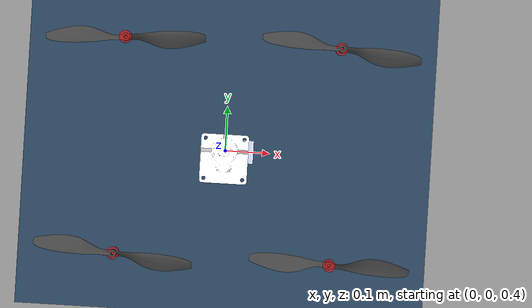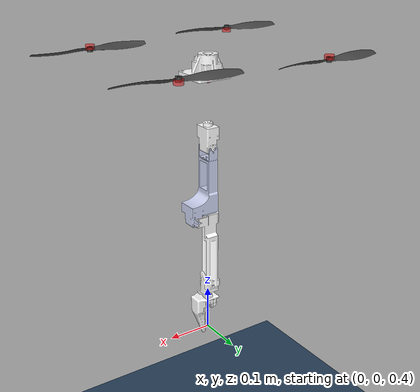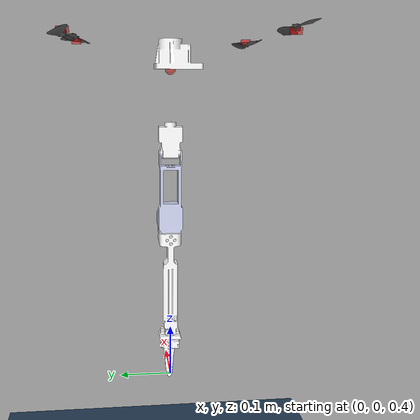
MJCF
<mujoco model="x500_arm_v1">
    <compiler angle="radian" meshdir="meshes/" />
    <option timestep="0.005" integrator="implicit" density="1.225" viscosity="1.8e-5"/>
    <size njmax="500" nconmax="100" />
    <asset>
        <texture name="grid" type="2d" builtin="checker" width="512" height="512" rgb1=".1 .2 .3" rgb2=".2 .3 .4"/>
        <material name="grid" texture="grid" texrepeat="1 1" texuniform="true" reflectance="0.2" specular="1.0" shininess="0.5"/>
        <mesh name="base_link" file="base_link.STL" />
        <mesh name="rotor_1" file="rotor_1.STL" />
        <mesh name="rotor_2" file="rotor_2.STL" />
        <mesh name="rotor_3" file="rotor_3.STL" />
        <mesh name="rotor_4" file="rotor_4.STL" />
        <mesh name="link_1" file="link_1.STL" />
        <mesh name="link_2" file="link_2.STL" />
        <mesh name="link_3" file="link_3.STL" />
        <mesh name="link_4" file="link_4.STL" />
        <mesh name="link_5" file="link_5.STL" />
    </asset>
    <worldbody>
        <geom name="floor" type="plane" pos="0 0 0" size="0 0 0.1" contype="1" conaffinity="1" material="grid"/>
        <light directional="true" diffuse=".8 .8 .8" specular=".5 .5 .5" pos="0 0 5" dir="0 0 -1" castshadow="true"/>
        <body name="base_link" pos="0 0 1">
            <inertial pos="0.0165436 0.00023483 -0.0394339" quat="0.00462653 0.709778 -0.0056507 0.704387" mass="0.781896" diaginertia="0.016914 0.0133249 0.0128457" />
            <joint name="floating_base_joint" type="free" />
            <geom type="mesh" contype="1" conaffinity="1" group="1" rgba="1 1 1 1" mesh="base_link" />
            <site name="base_link_origin" type="sphere" size="0.01" rgba="1 0 0 0.5" pos="0 0 0"/>
            <body name="rotor_1" pos="0.18164 -0.17688 0.056">
                <inertial pos="0 0 0.0062143" quat="-0.0103827 0.707031 0.0103827 0.707031" mass="0.012" diaginertia="5.789e-05 5.76494e-05 4.10648e-07" />
                <joint name="rotor_joint_1" pos="0 0 0" axis="0 0 1" />
                <geom type="mesh" contype="1" conaffinity="1" group="1" rgba="0.25098 0.25098 0.25098 1" mesh="rotor_1" />
                <site name="rotor_joint_thrust1" type="cylinder" size="0.01 0.005" pos="0 0 0" rgba="1 0 0 0.5"/>
            </body>
            <body name="rotor_2" pos="0.18164 0.17688 0.056">
                <inertial pos="0 0 0.0062122" quat="0.0104388 0.70703 -0.0104388 0.70703" mass="0.012" diaginertia="5.793e-05 5.76799e-05 4.10086e-07" />
                <joint name="rotor_joint_2" pos="0 0 0" axis="0 0 1" />
                <geom type="mesh" contype="1" conaffinity="1" group="1" rgba="0.25098 0.25098 0.25098 1" mesh="rotor_2" />
                <site name="rotor_joint_thrust2" type="cylinder" size="0.01 0.005" pos="0 0 0" rgba="1 0 0 0.5"/>
            </body>
            <body name="rotor_3" pos="-0.17212 0.17688 0.056">
                <inertial pos="0 0 0.0062143" quat="-0.0103827 0.707031 0.0103827 0.707031" mass="0.012" diaginertia="5.789e-05 5.76494e-05 4.10648e-07" />
                <joint name="rotor_joint_3" pos="0 0 0" axis="0 0 1" />
                <geom type="mesh" contype="1" conaffinity="1" group="1" rgba="0.25098 0.25098 0.25098 1" mesh="rotor_3" />
                <site name="rotor_joint_thrust3" type="cylinder" size="0.01 0.005" pos="0 0 0" rgba="1 0 0 0.5"/>
            </body>
            <body name="rotor_4" pos="-0.17212 -0.17688 0.056">
                <inertial pos="0 0 0.00621224" quat="0.0104388 0.70703 -0.0104388 0.70703" mass="0.012" diaginertia="5.793e-05 5.76799e-05 4.10086e-07" />
                <joint name="rotor_joint_4" pos="0 0 0" axis="0 0 1" />
                <geom type="mesh" contype="1" conaffinity="1" group="1" rgba="0.25098 0.25098 0.25098 1" mesh="rotor_4" />
                <site name="rotor_joint_thrust4" type="cylinder" size="0.01 0.005" pos="0 0 0" rgba="1 0 0 0.5"/>
            </body>
            <body name="link_1" pos="0 0 -0.10331">
                <inertial pos="0 0.0015687 -0.034602" quat="0.999256 0.0385748 0 0" mass="0.08581" diaginertia="3.717e-05 3.01296e-05 1.84204e-05" />
                <joint name="joint_1" pos="0 0 0" axis="0 0 1" limited="true" range="-2.8973 2.8973" damping="0.72763" frictionloss="0.068647" />
                <geom type="mesh" contype="1" conaffinity="1" group="1" rgba="1 1 1 1" mesh="link_1" />
                <body name="link_2" pos="0 0 -0.04861" quat="-2.59734e-06 -2.59735e-06 0.707108 0.707105">
                    <inertial pos="-0.0260946 -0.13097 0.00115046" quat="0.618576 0.473741 -0.51792 0.353118" mass="0.11524" diaginertia="0.000254471 0.000252713 4.03853e-05" />
                    <joint name="joint_2" pos="0 0 0" axis="0 0 1" limited="true" range="-1.7628 1.7628" damping="0.62275" frictionloss="0.098067" />
                    <geom type="mesh" contype="1" conaffinity="1" group="1" rgba="0.79216 0.81961 0.93333 1" mesh="link_2" />
                    <body name="link_3" pos="-0.03814 -0.164 0.0002">
                        <inertial pos="0.0395021 -0.10829 0.00063991" quat="0.488487 0.513244 -0.485818 0.511803" mass="0.0848" diaginertia="0.000517311 0.000512861 1.8818e-05" />
                        <joint name="joint_3" pos="0 0 0" axis="0 0 1" limited="true" range="0 3.5186" damping="0.72763" frictionloss="0.068647" />
                        <geom type="mesh" contype="1" conaffinity="1" group="1" rgba="1 1 1 1" mesh="link_3" />
                        <body name="link_4" pos="0.03582 -0.1935 0.00077" quat="-2.59734e-06 2.59735e-06 0.707108 -0.707105">
                            <inertial pos="-0.0181121 -5.48e-06 0.0317442" quat="0.703728 -0.063696 -0.0627467 0.704821" mass="0.01547" diaginertia="1.17e-05 1.06262e-05 3.49374e-06" />
                            <joint name="joint_4" pos="0 0 0" axis="0 0 1" limited="true" range="-2.8973 2.8973" damping="0.13298" frictionloss="0.027851" />
                            <geom type="mesh" contype="1" conaffinity="1" group="1" rgba="1 1 1 1" mesh="link_4" />
                            <body name="link_5" pos="0.0044 0 0.02243" quat="0.707105 0.707108 0 0">
                                <inertial pos="-0.0015718 0.0322801 -0.00038534" quat="0.694561 0.718322 0.0332439 0.0222174" mass="0.00926" diaginertia="4.4213e-06 3.8733e-06 9.55405e-07" />
                                <joint name="joint_5" pos="0 0 0" axis="0 0 1" limited="true" range="0 1.7628" damping="0.13298" frictionloss="0.027851" />
                                <geom type="mesh" contype="1" conaffinity="1" group="1" rgba="1 1 1 1" mesh="link_5" />
                            </body>
                        </body>
                    </body>
                </body>
            </body>
        </body>
    </worldbody>
    <actuator>
        <motor name="rotor_joint_1" joint="rotor_joint_1" />
        <motor name="rotor_joint_2" joint="rotor_joint_2" />
        <motor name="rotor_joint_3" joint="rotor_joint_3" />
        <motor name="rotor_joint_4" joint="rotor_joint_4" />
        <motor name="rotor_joint_thrust1" site="rotor_joint_thrust1" gear="0 0 1 0 0 -0.016" />
        <motor name="rotor_joint_thrust2" site="rotor_joint_thrust2" gear="0 0 1 0 0 0.016" />
        <motor name="rotor_joint_thrust3" site="rotor_joint_thrust3" gear="0 0 1 0 0 -0.016" />
        <motor name="rotor_joint_thrust4" site="rotor_joint_thrust4" gear="0 0 1 0 0 0.016" />
        <position name="joint_1" joint="joint_1" kp="30" dampratio="1" />
        <position name="joint_2" joint="joint_2" kp="50" dampratio="1" />
        <position name="joint_3" joint="joint_3" kp="30" dampratio="1" />
        <position name="joint_4" joint="joint_4" kp="10" dampratio="1" />
        <position name="joint_5" joint="joint_5" kp="10" dampratio="1" />
    </actuator>
    <sensor>
        <framepos name="framepos" objtype="site" objname="base_link_origin" />
        <framequat name="framequat" objtype="site" objname="base_link_origin" />
        <velocimeter name="velocimeter" site="base_link_origin" />
        <gyro name="gyro" site="base_link_origin" />
    </sensor>
</mujoco>
